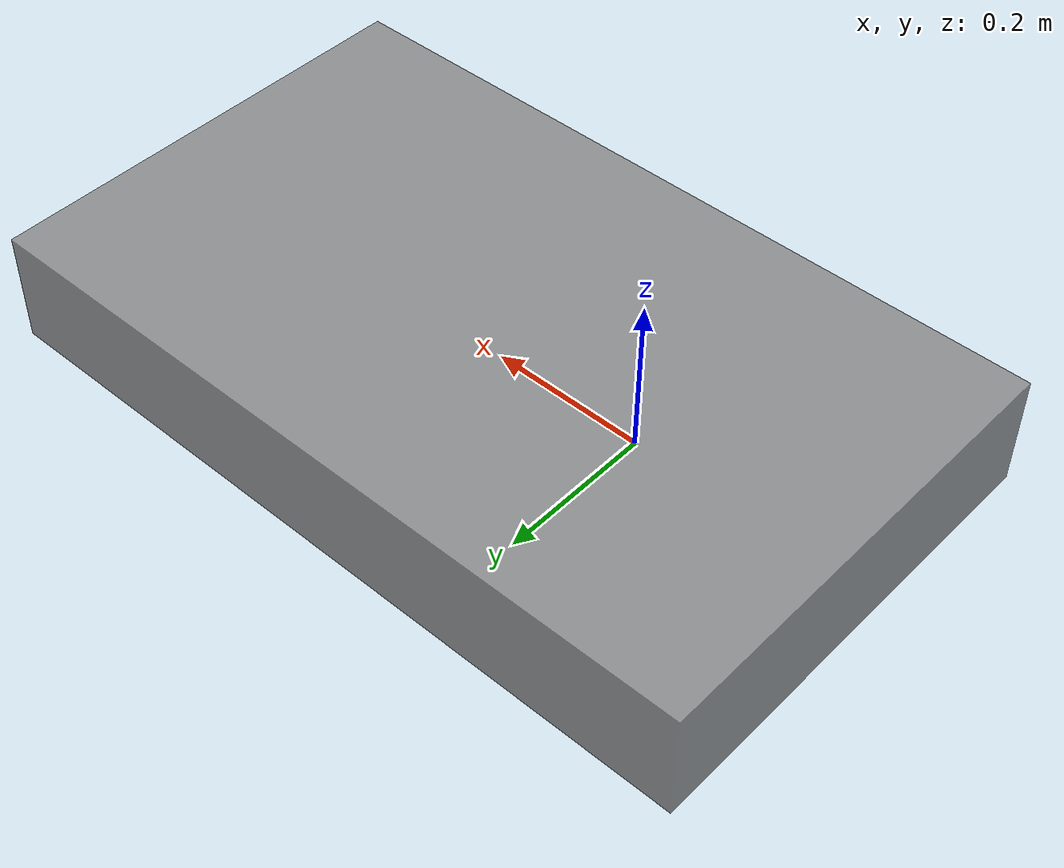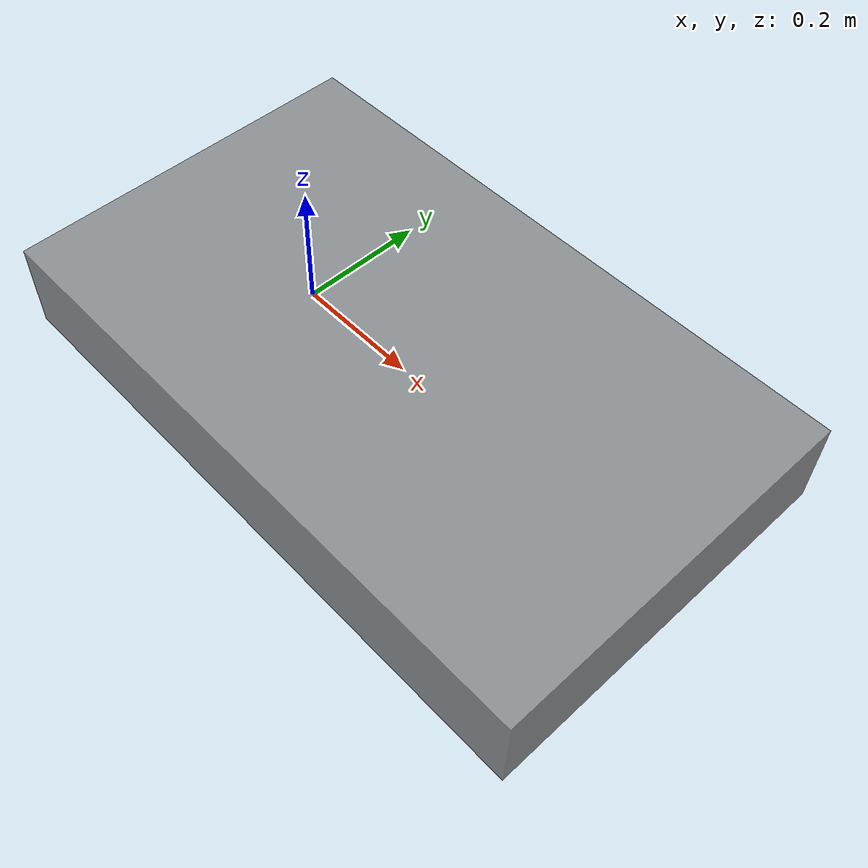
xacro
<?xml version="1.0"?>
<!--
  Chassis + base_footprint. Dimensions and mass mirror the brain URDF
  (src/agv_description/urdf/agv_base.xacro in agv-greenhouse).
-->
<robot xmlns:xacro="http://www.ros.org/wiki/xacro">

  <xacro:property name="chassis_length" value="1.0"/>
  <xacro:property name="chassis_width"  value="0.6"/>
  <xacro:property name="chassis_height" value="0.15"/>

  <link name="base_link">
    <visual>
      <origin xyz="0.2 0 0" rpy="0 0 0"/>
      <geometry>
        <box size="${chassis_length} ${chassis_width} ${chassis_height}"/>
      </geometry>
      <material name="chassis_grey">
        <color rgba="0.5 0.5 0.5 0.8"/>
      </material>
    </visual>
    <collision>
      <origin xyz="0.2 0 0" rpy="0 0 0"/>
      <geometry>
        <box size="${chassis_length} ${chassis_width} ${chassis_height}"/>
      </geometry>
    </collision>
    <inertial>
      <mass value="30.0"/>
      <origin xyz="0.2 0 0"/>
      <inertia ixx="1.0" ixy="0" ixz="0" iyy="1.0" iyz="0" izz="1.0"/>
    </inertial>
  </link>

  <!-- base_footprint at ground level. Fixed z matches brain URDF. -->
  <link name="base_footprint"/>

  <joint name="base_footprint_joint" type="fixed">
    <parent link="base_link"/>
    <child  link="base_footprint"/>
    <origin xyz="0 0 -0.200" rpy="0 0 0"/>
  </joint>

</robot>
